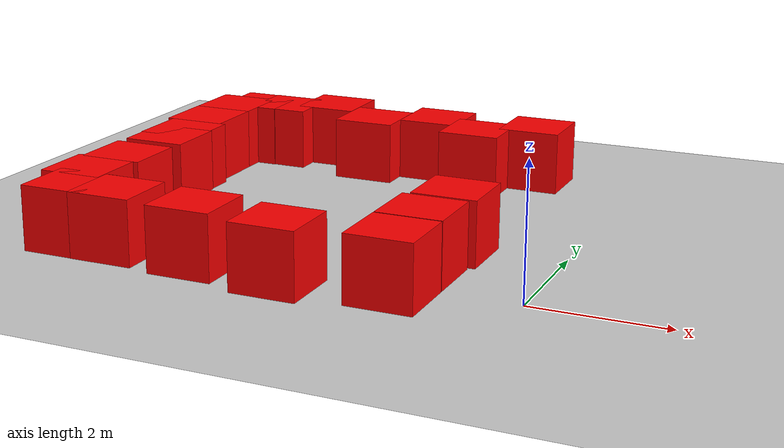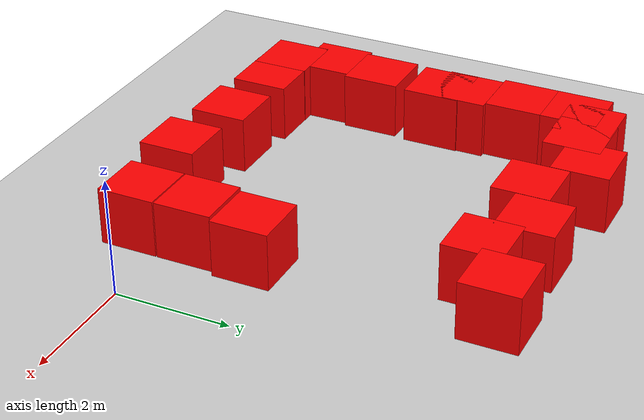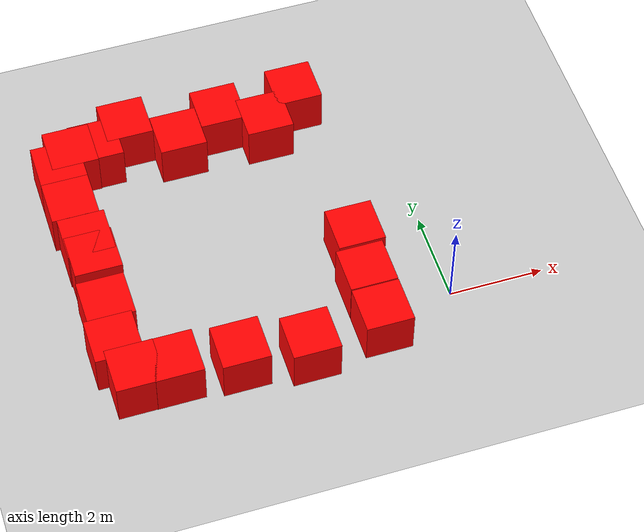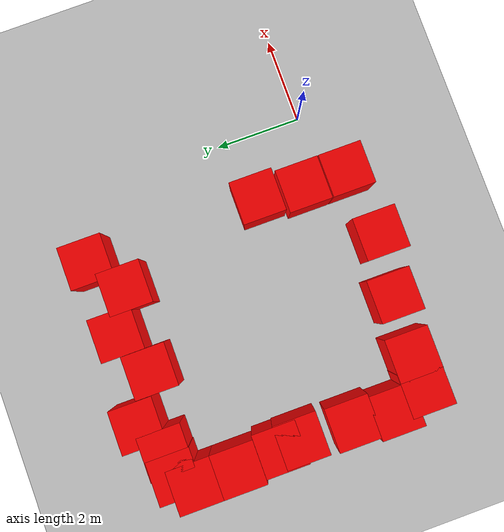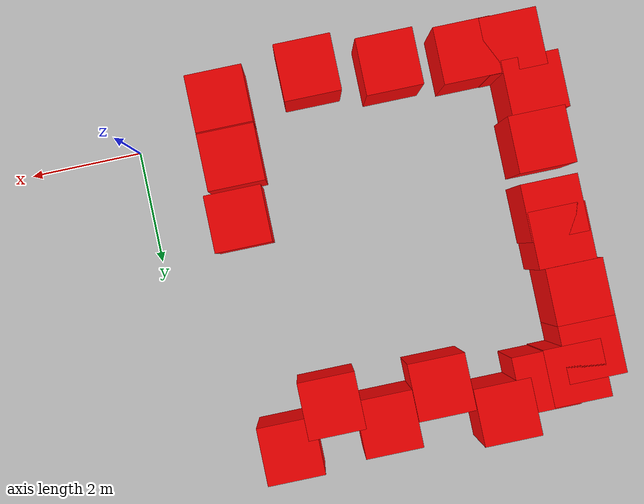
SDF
<sdf version="1.7">
 <world name="default">
  <model name="ground_plane">
   <static>1</static>
   <link name="link">
    <collision name="collision">
     <geometry><plane><normal>0 0 1</normal><size>100 100</size></plane></geometry>
     <surface><friction><ode><mu>100</mu><mu2>50</mu2></ode></friction></surface>
    </collision>
    <visual name="visual">
     <cast_shadows>0</cast_shadows>
     <geometry><plane><normal>0 0 1</normal><size>100 100</size></plane></geometry>
     <material>
      <script><uri>file://media/materials/scripts/gazebo.material</uri><name>Gazebo/Grey</name></script>
     </material>
    </visual>
   </link>
  </model>
  <model name="unit_box_clone_clone_1">
   <link name="link">
    <inertial>
     <mass>1</mass>
     <inertia>
      <ixx>0.166667</ixx>
      <ixy>0</ixy>
      <ixz>0</ixz>
      <iyy>0.166667</iyy>
      <iyz>0</iyz>
      <izz>0.166667</izz>
     </inertia>
    </inertial>
    <visual name="visual">
     <geometry><box><size>1 1 1</size></box></geometry>
     <material>
      <script><name>Gazebo/Grey</name><uri>file://media/materials/scripts/gazebo.material</uri></script>
      <shader type="pixel"><normal_map>__default__</normal_map></shader>
      <ambient>1 0 0 0</ambient>
      <diffuse>0.7 0.7 0.7 1</diffuse>
      <specular>0.01 0.01 0.01 1</specular>
      <emissive>0 0 0 1</emissive>
     </material>
    </visual>
    <collision name="collision">
     <geometry><box><size>1 1 1</size></box></geometry>
     <surface>
      <friction>
       <ode><mu>1</mu><mu2>1</mu2><fdir1>0 0 0</fdir1><slip1>0</slip1><slip2>0</slip2></ode>
       <torsional>
        <coefficient>1</coefficient>
        <patch_radius>0</patch_radius>
        <surface_radius>0</surface_radius>
        <use_patch_radius>1</use_patch_radius>
        <ode><slip>0</slip></ode>
       </torsional>
      </friction>
      <bounce><restitution_coefficient>0</restitution_coefficient><threshold>1e+06</threshold></bounce>
      <contact>
       <collide_without_contact>0</collide_without_contact>
       <collide_without_contact_bitmask>1</collide_without_contact_bitmask>
       <collide_bitmask>1</collide_bitmask>
       <ode>
        <soft_cfm>0</soft_cfm>
        <soft_erp>0.2</soft_erp>
        <kp>1e+13</kp>
        <kd>1</kd>
        <max_vel>0.01</max_vel>
        <min_depth>0</min_depth>
       </ode>
       <bullet>
        <split_impulse>1</split_impulse>
        <split_impulse_penetration_threshold>-0.01</split_impulse_penetration_threshold>
        <soft_cfm>0</soft_cfm>
        <soft_erp>0.2</soft_erp>
        <kp>1e+13</kp>
        <kd>1</kd>
       </bullet>
      </contact>
     </surface>
    </collision>
   </link>
   <static>0</static>
   <pose>-5.37844 5.74394 0.5 0 -0 0</pose>
  </model>
  <model name="unit_box_clone_clone_2">
   <link name="link">
    <inertial>
     <mass>1</mass>
     <inertia>
      <ixx>0.166667</ixx>
      <ixy>0</ixy>
      <ixz>0</ixz>
      <iyy>0.166667</iyy>
      <iyz>0</iyz>
      <izz>0.166667</izz>
     </inertia>
    </inertial>
    <visual name="visual">
     <geometry><box><size>1 1 1</size></box></geometry>
     <material>
      <script><name>Gazebo/Grey</name><uri>file://media/materials/scripts/gazebo.material</uri></script>
      <shader type="pixel"><normal_map>__default__</normal_map></shader>
      <ambient>1 0 0 0</ambient>
      <diffuse>0.7 0.7 0.7 1</diffuse>
      <specular>0.01 0.01 0.01 1</specular>
      <emissive>0 0 0 1</emissive>
     </material>
    </visual>
    <collision name="collision">
     <geometry><box><size>1 1 1</size></box></geometry>
     <surface>
      <friction>
       <ode><mu>1</mu><mu2>1</mu2><fdir1>0 0 0</fdir1><slip1>0</slip1><slip2>0</slip2></ode>
       <torsional>
        <coefficient>1</coefficient>
        <patch_radius>0</patch_radius>
        <surface_radius>0</surface_radius>
        <use_patch_radius>1</use_patch_radius>
        <ode><slip>0</slip></ode>
       </torsional>
      </friction>
      <bounce><restitution_coefficient>0</restitution_coefficient><threshold>1e+06</threshold></bounce>
      <contact>
       <collide_without_contact>0</collide_without_contact>
       <collide_without_contact_bitmask>1</collide_without_contact_bitmask>
       <collide_bitmask>1</collide_bitmask>
       <ode>
        <soft_cfm>0</soft_cfm>
        <soft_erp>0.2</soft_erp>
        <kp>1e+13</kp>
        <kd>1</kd>
        <max_vel>0.01</max_vel>
        <min_depth>0</min_depth>
       </ode>
       <bullet>
        <split_impulse>1</split_impulse>
        <split_impulse_penetration_threshold>-0.01</split_impulse_penetration_threshold>
        <soft_cfm>0</soft_cfm>
        <soft_erp>0.2</soft_erp>
        <kp>1e+13</kp>
        <kd>1</kd>
       </bullet>
      </contact>
     </surface>
    </collision>
   </link>
   <static>0</static>
   <pose>-1.64328 5.63469 0.5 0 -0 0</pose>
  </model>
  <model name="unit_box_clone_clone_3">
   <link name="link">
    <inertial>
     <mass>1</mass>
     <inertia>
      <ixx>0.166667</ixx>
      <ixy>0</ixy>
      <ixz>0</ixz>
      <iyy>0.166667</iyy>
      <iyz>0</iyz>
      <izz>0.166667</izz>
     </inertia>
    </inertial>
    <visual name="visual">
     <geometry><box><size>1 1 1</size></box></geometry>
     <material>
      <script><name>Gazebo/Grey</name><uri>file://media/materials/scripts/gazebo.material</uri></script>
      <shader type="pixel"><normal_map>__default__</normal_map></shader>
      <ambient>1 0 0 0</ambient>
      <diffuse>0.7 0.7 0.7 1</diffuse>
      <specular>0.01 0.01 0.01 1</specular>
      <emissive>0 0 0 1</emissive>
     </material>
    </visual>
    <collision name="collision">
     <geometry><box><size>1 1 1</size></box></geometry>
     <surface>
      <friction>
       <ode><mu>1</mu><mu2>1</mu2><fdir1>0 0 0</fdir1><slip1>0</slip1><slip2>0</slip2></ode>
       <torsional>
        <coefficient>1</coefficient>
        <patch_radius>0</patch_radius>
        <surface_radius>0</surface_radius>
        <use_patch_radius>1</use_patch_radius>
        <ode><slip>0</slip></ode>
       </torsional>
      </friction>
      <bounce><restitution_coefficient>0</restitution_coefficient><threshold>1e+06</threshold></bounce>
      <contact>
       <collide_without_contact>0</collide_without_contact>
       <collide_without_contact_bitmask>1</collide_without_contact_bitmask>
       <collide_bitmask>1</collide_bitmask>
       <ode>
        <soft_cfm>0</soft_cfm>
        <soft_erp>0.2</soft_erp>
        <kp>1e+13</kp>
        <kd>1</kd>
        <max_vel>0.01</max_vel>
        <min_depth>0</min_depth>
       </ode>
       <bullet>
        <split_impulse>1</split_impulse>
        <split_impulse_penetration_threshold>-0.01</split_impulse_penetration_threshold>
        <soft_cfm>0</soft_cfm>
        <soft_erp>0.2</soft_erp>
        <kp>1e+13</kp>
        <kd>1</kd>
       </bullet>
      </contact>
     </surface>
    </collision>
   </link>
   <static>0</static>
   <pose>-1.6664 -0.488777 0.5 0 -0 0</pose>
  </model>
  <model name="unit_box_clone_clone_4">
   <link name="link">
    <inertial>
     <mass>1</mass>
     <inertia>
      <ixx>0.166667</ixx>
      <ixy>0</ixy>
      <ixz>0</ixz>
      <iyy>0.166667</iyy>
      <iyz>0</iyz>
      <izz>0.166667</izz>
     </inertia>
    </inertial>
    <visual name="visual">
     <geometry><box><size>1 1 1</size></box></geometry>
     <material>
      <script><name>Gazebo/Grey</name><uri>file://media/materials/scripts/gazebo.material</uri></script>
      <shader type="pixel"><normal_map>__default__</normal_map></shader>
      <ambient>1 0 0 0</ambient>
      <diffuse>0.7 0.7 0.7 1</diffuse>
      <specular>0.01 0.01 0.01 1</specular>
      <emissive>0 0 0 1</emissive>
     </material>
    </visual>
    <collision name="collision">
     <geometry><box><size>1 1 1</size></box></geometry>
     <surface>
      <friction>
       <ode><mu>1</mu><mu2>1</mu2><fdir1>0 0 0</fdir1><slip1>0</slip1><slip2>0</slip2></ode>
       <torsional>
        <coefficient>1</coefficient>
        <patch_radius>0</patch_radius>
        <surface_radius>0</surface_radius>
        <use_patch_radius>1</use_patch_radius>
        <ode><slip>0</slip></ode>
       </torsional>
      </friction>
      <bounce><restitution_coefficient>0</restitution_coefficient><threshold>1e+06</threshold></bounce>
      <contact>
       <collide_without_contact>0</collide_without_contact>
       <collide_without_contact_bitmask>1</collide_without_contact_bitmask>
       <collide_bitmask>1</collide_bitmask>
       <ode>
        <soft_cfm>0</soft_cfm>
        <soft_erp>0.2</soft_erp>
        <kp>1e+13</kp>
        <kd>1</kd>
        <max_vel>0.01</max_vel>
        <min_depth>0</min_depth>
       </ode>
       <bullet>
        <split_impulse>1</split_impulse>
        <split_impulse_penetration_threshold>-0.01</split_impulse_penetration_threshold>
        <soft_cfm>0</soft_cfm>
        <soft_erp>0.2</soft_erp>
        <kp>1e+13</kp>
        <kd>1</kd>
       </bullet>
      </contact>
     </surface>
    </collision>
   </link>
   <static>0</static>
   <pose>-5.98599 -0.419497 0.5 0 -0 0</pose>
  </model>
  <model name="unit_box_clone_clone_15">
   <link name="link">
    <inertial>
     <mass>1</mass>
     <inertia>
      <ixx>0.166667</ixx>
      <ixy>0</ixy>
      <ixz>0</ixz>
      <iyy>0.166667</iyy>
      <iyz>0</iyz>
      <izz>0.166667</izz>
     </inertia>
    </inertial>
    <visual name="visual">
     <geometry><box><size>1 1 1</size></box></geometry>
     <material>
      <script><name>Gazebo/Grey</name><uri>file://media/materials/scripts/gazebo.material</uri></script>
      <shader type="pixel"><normal_map>__default__</normal_map></shader>
      <ambient>1 0 0 0</ambient>
      <diffuse>0.7 0.7 0.7 1</diffuse>
      <specular>0.01 0.01 0.01 1</specular>
      <emissive>0 0 0 1</emissive>
     </material>
    </visual>
    <collision name="collision">
     <geometry><box><size>1 1 1</size></box></geometry>
     <surface>
      <friction>
       <ode><mu>1</mu><mu2>1</mu2><fdir1>0 0 0</fdir1><slip1>0</slip1><slip2>0</slip2></ode>
       <torsional>
        <coefficient>1</coefficient>
        <patch_radius>0</patch_radius>
        <surface_radius>0</surface_radius>
        <use_patch_radius>1</use_patch_radius>
        <ode><slip>0</slip></ode>
       </torsional>
      </friction>
      <bounce><restitution_coefficient>0</restitution_coefficient><threshold>1e+06</threshold></bounce>
      <contact>
       <collide_without_contact>0</collide_without_contact>
       <collide_without_contact_bitmask>1</collide_without_contact_bitmask>
       <collide_bitmask>1</collide_bitmask>
       <ode>
        <soft_cfm>0</soft_cfm>
        <soft_erp>0.2</soft_erp>
        <kp>1e+13</kp>
        <kd>1</kd>
        <max_vel>0.01</max_vel>
        <min_depth>0</min_depth>
       </ode>
       <bullet>
        <split_impulse>1</split_impulse>
        <split_impulse_penetration_threshold>-0.01</split_impulse_penetration_threshold>
        <soft_cfm>0</soft_cfm>
        <soft_erp>0.2</soft_erp>
        <kp>1e+13</kp>
        <kd>1</kd>
       </bullet>
      </contact>
     </surface>
    </collision>
   </link>
   <static>0</static>
   <pose>-3.25657 -0.697342 0.5 0 -0 0</pose>
  </model>
  <model name="unit_box_clone_clone_16">
   <link name="link">
    <inertial>
     <mass>1</mass>
     <inertia>
      <ixx>0.166667</ixx>
      <ixy>0</ixy>
      <ixz>0</ixz>
      <iyy>0.166667</iyy>
      <iyz>0</iyz>
      <izz>0.166667</izz>
     </inertia>
    </inertial>
    <visual name="visual">
     <geometry><box><size>1 1 1</size></box></geometry>
     <material>
      <script><name>Gazebo/Grey</name><uri>file://media/materials/scripts/gazebo.material</uri></script>
      <shader type="pixel"><normal_map>__default__</normal_map></shader>
      <ambient>1 0 0 0</ambient>
      <diffuse>0.7 0.7 0.7 1</diffuse>
      <specular>0.01 0.01 0.01 1</specular>
      <emissive>0 0 0 1</emissive>
     </material>
    </visual>
    <collision name="collision">
     <geometry><box><size>1 1 1</size></box></geometry>
     <surface>
      <friction>
       <ode><mu>1</mu><mu2>1</mu2><fdir1>0 0 0</fdir1><slip1>0</slip1><slip2>0</slip2></ode>
       <torsional>
        <coefficient>1</coefficient>
        <patch_radius>0</patch_radius>
        <surface_radius>0</surface_radius>
        <use_patch_radius>1</use_patch_radius>
        <ode><slip>0</slip></ode>
       </torsional>
      </friction>
      <bounce><restitution_coefficient>0</restitution_coefficient><threshold>1e+06</threshold></bounce>
      <contact>
       <collide_without_contact>0</collide_without_contact>
       <collide_without_contact_bitmask>1</collide_without_contact_bitmask>
       <collide_bitmask>1</collide_bitmask>
       <ode>
        <soft_cfm>0</soft_cfm>
        <soft_erp>0.2</soft_erp>
        <kp>1e+13</kp>
        <kd>1</kd>
        <max_vel>0.01</max_vel>
        <min_depth>0</min_depth>
       </ode>
       <bullet>
        <split_impulse>1</split_impulse>
        <split_impulse_penetration_threshold>-0.01</split_impulse_penetration_threshold>
        <soft_cfm>0</soft_cfm>
        <soft_erp>0.2</soft_erp>
        <kp>1e+13</kp>
        <kd>1</kd>
       </bullet>
      </contact>
     </surface>
    </collision>
   </link>
   <static>0</static>
   <pose>-4.6488 -0.507954 0.5 0 -0 0</pose>
  </model>
  <model name="unit_box_clone_clone_23">
   <link name="link">
    <inertial>
     <mass>1</mass>
     <inertia>
      <ixx>0.166667</ixx>
      <ixy>0</ixy>
      <ixz>0</ixz>
      <iyy>0.166667</iyy>
      <iyz>0</iyz>
      <izz>0.166667</izz>
     </inertia>
    </inertial>
    <visual name="visual">
     <geometry><box><size>1 1 1</size></box></geometry>
     <material>
      <script><name>Gazebo/Grey</name><uri>file://media/materials/scripts/gazebo.material</uri></script>
      <shader type="pixel"><normal_map>__default__</normal_map></shader>
      <ambient>1 0 0 0</ambient>
      <diffuse>0.7 0.7 0.7 1</diffuse>
      <specular>0.01 0.01 0.01 1</specular>
      <emissive>0 0 0 1</emissive>
     </material>
    </visual>
    <collision name="collision">
     <geometry><box><size>1 1 1</size></box></geometry>
     <surface>
      <friction>
       <ode><mu>1</mu><mu2>1</mu2><fdir1>0 0 0</fdir1><slip1>0</slip1><slip2>0</slip2></ode>
       <torsional>
        <coefficient>1</coefficient>
        <patch_radius>0</patch_radius>
        <surface_radius>0</surface_radius>
        <use_patch_radius>1</use_patch_radius>
        <ode><slip>0</slip></ode>
       </torsional>
      </friction>
      <bounce><restitution_coefficient>0</restitution_coefficient><threshold>1e+06</threshold></bounce>
      <contact>
       <collide_without_contact>0</collide_without_contact>
       <collide_without_contact_bitmask>1</collide_without_contact_bitmask>
       <collide_bitmask>1</collide_bitmask>
       <ode>
        <soft_cfm>0</soft_cfm>
        <soft_erp>0.2</soft_erp>
        <kp>1e+13</kp>
        <kd>1</kd>
        <max_vel>0.01</max_vel>
        <min_depth>0</min_depth>
       </ode>
       <bullet>
        <split_impulse>1</split_impulse>
        <split_impulse_penetration_threshold>-0.01</split_impulse_penetration_threshold>
        <soft_cfm>0</soft_cfm>
        <soft_erp>0.2</soft_erp>
        <kp>1e+13</kp>
        <kd>1</kd>
       </bullet>
      </contact>
     </surface>
    </collision>
   </link>
   <static>0</static>
   <pose>-1.56953 1.58784 0.5 0 -0 0</pose>
  </model>
  <model name="unit_box_clone_clone_25">
   <link name="link">
    <inertial>
     <mass>1</mass>
     <inertia>
      <ixx>0.166667</ixx>
      <ixy>0</ixy>
      <ixz>0</ixz>
      <iyy>0.166667</iyy>
      <iyz>0</iyz>
      <izz>0.166667</izz>
     </inertia>
    </inertial>
    <visual name="visual">
     <geometry><box><size>1 1 1</size></box></geometry>
     <material>
      <script><name>Gazebo/Grey</name><uri>file://media/materials/scripts/gazebo.material</uri></script>
      <shader type="pixel"><normal_map>__default__</normal_map></shader>
      <ambient>1 0 0 0</ambient>
      <diffuse>0.7 0.7 0.7 1</diffuse>
      <specular>0.01 0.01 0.01 1</specular>
      <emissive>0 0 0 1</emissive>
     </material>
    </visual>
    <collision name="collision">
     <geometry><box><size>1 1 1</size></box></geometry>
     <surface>
      <friction>
       <ode><mu>1</mu><mu2>1</mu2><fdir1>0 0 0</fdir1><slip1>0</slip1><slip2>0</slip2></ode>
       <torsional>
        <coefficient>1</coefficient>
        <patch_radius>0</patch_radius>
        <surface_radius>0</surface_radius>
        <use_patch_radius>1</use_patch_radius>
        <ode><slip>0</slip></ode>
       </torsional>
      </friction>
      <bounce><restitution_coefficient>0</restitution_coefficient><threshold>1e+06</threshold></bounce>
      <contact>
       <collide_without_contact>0</collide_without_contact>
       <collide_without_contact_bitmask>1</collide_without_contact_bitmask>
       <collide_bitmask>1</collide_bitmask>
       <ode>
        <soft_cfm>0</soft_cfm>
        <soft_erp>0.2</soft_erp>
        <kp>1e+13</kp>
        <kd>1</kd>
        <max_vel>0.01</max_vel>
        <min_depth>0</min_depth>
       </ode>
       <bullet>
        <split_impulse>1</split_impulse>
        <split_impulse_penetration_threshold>-0.01</split_impulse_penetration_threshold>
        <soft_cfm>0</soft_cfm>
        <soft_erp>0.2</soft_erp>
        <kp>1e+13</kp>
        <kd>1</kd>
       </bullet>
      </contact>
     </surface>
    </collision>
   </link>
   <static>0</static>
   <pose>-3.3651 5.52839 0.5 0 -0 0</pose>
  </model>
  <model name="unit_box_clone_clone_52">
   <link name="link">
    <inertial>
     <mass>1</mass>
     <inertia>
      <ixx>0.166667</ixx>
      <ixy>0</ixy>
      <ixz>0</ixz>
      <iyy>0.166667</iyy>
      <iyz>0</iyz>
      <izz>0.166667</izz>
     </inertia>
    </inertial>
    <visual name="visual">
     <geometry><box><size>1 1 1</size></box></geometry>
     <material>
      <script><name>Gazebo/Grey</name><uri>file://media/materials/scripts/gazebo.material</uri></script>
      <shader type="pixel"><normal_map>__default__</normal_map></shader>
      <ambient>1 0 0 0</ambient>
      <diffuse>0.7 0.7 0.7 1</diffuse>
      <specular>0.01 0.01 0.01 1</specular>
      <emissive>0 0 0 1</emissive>
     </material>
    </visual>
    <collision name="collision">
     <geometry><box><size>1 1 1</size></box></geometry>
     <surface>
      <friction>
       <ode><mu>1</mu><mu2>1</mu2><fdir1>0 0 0</fdir1><slip1>0</slip1><slip2>0</slip2></ode>
       <torsional>
        <coefficient>1</coefficient>
        <patch_radius>0</patch_radius>
        <surface_radius>0</surface_radius>
        <use_patch_radius>1</use_patch_radius>
        <ode><slip>0</slip></ode>
       </torsional>
      </friction>
      <bounce><restitution_coefficient>0</restitution_coefficient><threshold>1e+06</threshold></bounce>
      <contact>
       <collide_without_contact>0</collide_without_contact>
       <collide_without_contact_bitmask>1</collide_without_contact_bitmask>
       <collide_bitmask>1</collide_bitmask>
       <ode>
        <soft_cfm>0</soft_cfm>
        <soft_erp>0.2</soft_erp>
        <kp>1e+13</kp>
        <kd>1</kd>
        <max_vel>0.01</max_vel>
        <min_depth>0</min_depth>
       </ode>
       <bullet>
        <split_impulse>1</split_impulse>
        <split_impulse_penetration_threshold>-0.01</split_impulse_penetration_threshold>
        <soft_cfm>0</soft_cfm>
        <soft_erp>0.2</soft_erp>
        <kp>1e+13</kp>
        <kd>1</kd>
       </bullet>
      </contact>
     </surface>
    </collision>
   </link>
   <static>0</static>
   <pose>-6.78403 -0.413254 0.5 0 -0 0</pose>
  </model>
  <model name="unit_box_clone_clone_53">
   <link name="link">
    <inertial>
     <mass>1</mass>
     <inertia>
      <ixx>0.166667</ixx>
      <ixy>0</ixy>
      <ixz>0</ixz>
      <iyy>0.166667</iyy>
      <iyz>0</iyz>
      <izz>0.166667</izz>
     </inertia>
    </inertial>
    <visual name="visual">
     <geometry><box><size>1 1 1</size></box></geometry>
     <material>
      <script><name>Gazebo/Grey</name><uri>file://media/materials/scripts/gazebo.material</uri></script>
      <shader type="pixel"><normal_map>__default__</normal_map></shader>
      <ambient>1 0 0 0</ambient>
      <diffuse>0.7 0.7 0.7 1</diffuse>
      <specular>0.01 0.01 0.01 1</specular>
      <emissive>0 0 0 1</emissive>
     </material>
    </visual>
    <collision name="collision">
     <geometry><box><size>1 1 1</size></box></geometry>
     <surface>
      <friction>
       <ode><mu>1</mu><mu2>1</mu2><fdir1>0 0 0</fdir1><slip1>0</slip1><slip2>0</slip2></ode>
       <torsional>
        <coefficient>1</coefficient>
        <patch_radius>0</patch_radius>
        <surface_radius>0</surface_radius>
        <use_patch_radius>1</use_patch_radius>
        <ode><slip>0</slip></ode>
       </torsional>
      </friction>
      <bounce><restitution_coefficient>0</restitution_coefficient><threshold>1e+06</threshold></bounce>
      <contact>
       <collide_without_contact>0</collide_without_contact>
       <collide_without_contact_bitmask>1</collide_without_contact_bitmask>
       <collide_bitmask>1</collide_bitmask>
       <ode>
        <soft_cfm>0</soft_cfm>
        <soft_erp>0.2</soft_erp>
        <kp>1e+13</kp>
        <kd>1</kd>
        <max_vel>0.01</max_vel>
        <min_depth>0</min_depth>
       </ode>
       <bullet>
        <split_impulse>1</split_impulse>
        <split_impulse_penetration_threshold>-0.01</split_impulse_penetration_threshold>
        <soft_cfm>0</soft_cfm>
        <soft_erp>0.2</soft_erp>
        <kp>1e+13</kp>
        <kd>1</kd>
       </bullet>
      </contact>
     </surface>
    </collision>
   </link>
   <static>0</static>
   <pose>-7.00404 0.374459 0.5 0 -0 0</pose>
  </model>
  <model name="unit_box_clone_clone_54">
   <link name="link">
    <inertial>
     <mass>1</mass>
     <inertia>
      <ixx>0.166667</ixx>
      <ixy>0</ixy>
      <ixz>0</ixz>
      <iyy>0.166667</iyy>
      <iyz>0</iyz>
      <izz>0.166667</izz>
     </inertia>
    </inertial>
    <visual name="visual">
     <geometry><box><size>1 1 1</size></box></geometry>
     <material>
      <script><name>Gazebo/Grey</name><uri>file://media/materials/scripts/gazebo.material</uri></script>
      <shader type="pixel"><normal_map>__default__</normal_map></shader>
      <ambient>1 0 0 0</ambient>
      <diffuse>0.7 0.7 0.7 1</diffuse>
      <specular>0.01 0.01 0.01 1</specular>
      <emissive>0 0 0 1</emissive>
     </material>
    </visual>
    <collision name="collision">
     <geometry><box><size>1 1 1</size></box></geometry>
     <surface>
      <friction>
       <ode><mu>1</mu><mu2>1</mu2><fdir1>0 0 0</fdir1><slip1>0</slip1><slip2>0</slip2></ode>
       <torsional>
        <coefficient>1</coefficient>
        <patch_radius>0</patch_radius>
        <surface_radius>0</surface_radius>
        <use_patch_radius>1</use_patch_radius>
        <ode><slip>0</slip></ode>
       </torsional>
      </friction>
      <bounce><restitution_coefficient>0</restitution_coefficient><threshold>1e+06</threshold></bounce>
      <contact>
       <collide_without_contact>0</collide_without_contact>
       <collide_without_contact_bitmask>1</collide_without_contact_bitmask>
       <collide_bitmask>1</collide_bitmask>
       <ode>
        <soft_cfm>0</soft_cfm>
        <soft_erp>0.2</soft_erp>
        <kp>1e+13</kp>
        <kd>1</kd>
        <max_vel>0.01</max_vel>
        <min_depth>0</min_depth>
       </ode>
       <bullet>
        <split_impulse>1</split_impulse>
        <split_impulse_penetration_threshold>-0.01</split_impulse_penetration_threshold>
        <soft_cfm>0</soft_cfm>
        <soft_erp>0.2</soft_erp>
        <kp>1e+13</kp>
        <kd>1</kd>
       </bullet>
      </contact>
     </surface>
    </collision>
   </link>
   <static>0</static>
   <pose>-6.92168 1.32894 0.5 0 -0 0</pose>
  </model>
  <model name="unit_box_clone_clone_55">
   <link name="link">
    <inertial>
     <mass>1</mass>
     <inertia>
      <ixx>0.166667</ixx>
      <ixy>0</ixy>
      <ixz>0</ixz>
      <iyy>0.166667</iyy>
      <iyz>0</iyz>
      <izz>0.166667</izz>
     </inertia>
    </inertial>
    <visual name="visual">
     <geometry><box><size>1 1 1</size></box></geometry>
     <material>
      <script><name>Gazebo/Grey</name><uri>file://media/materials/scripts/gazebo.material</uri></script>
      <shader type="pixel"><normal_map>__default__</normal_map></shader>
      <ambient>1 0 0 0</ambient>
      <diffuse>0.7 0.7 0.7 1</diffuse>
      <specular>0.01 0.01 0.01 1</specular>
      <emissive>0 0 0 1</emissive>
     </material>
    </visual>
    <collision name="collision">
     <geometry><box><size>1 1 1</size></box></geometry>
     <surface>
      <friction>
       <ode><mu>1</mu><mu2>1</mu2><fdir1>0 0 0</fdir1><slip1>0</slip1><slip2>0</slip2></ode>
       <torsional>
        <coefficient>1</coefficient>
        <patch_radius>0</patch_radius>
        <surface_radius>0</surface_radius>
        <use_patch_radius>1</use_patch_radius>
        <ode><slip>0</slip></ode>
       </torsional>
      </friction>
      <bounce><restitution_coefficient>0</restitution_coefficient><threshold>1e+06</threshold></bounce>
      <contact>
       <collide_without_contact>0</collide_without_contact>
       <collide_without_contact_bitmask>1</collide_without_contact_bitmask>
       <collide_bitmask>1</collide_bitmask>
       <ode>
        <soft_cfm>0</soft_cfm>
        <soft_erp>0.2</soft_erp>
        <kp>1e+13</kp>
        <kd>1</kd>
        <max_vel>0.01</max_vel>
        <min_depth>0</min_depth>
       </ode>
       <bullet>
        <split_impulse>1</split_impulse>
        <split_impulse_penetration_threshold>-0.01</split_impulse_penetration_threshold>
        <soft_cfm>0</soft_cfm>
        <soft_erp>0.2</soft_erp>
        <kp>1e+13</kp>
        <kd>1</kd>
       </bullet>
      </contact>
     </surface>
    </collision>
   </link>
   <static>0</static>
   <pose>-6.88313 2.51413 0.5 0 -0 0</pose>
  </model>
  <model name="unit_box_clone_clone_56">
   <link name="link">
    <inertial>
     <mass>1</mass>
     <inertia>
      <ixx>0.166667</ixx>
      <ixy>0</ixy>
      <ixz>0</ixz>
      <iyy>0.166667</iyy>
      <iyz>0</iyz>
      <izz>0.166667</izz>
     </inertia>
    </inertial>
    <visual name="visual">
     <geometry><box><size>1 1 1</size></box></geometry>
     <material>
      <script><name>Gazebo/Grey</name><uri>file://media/materials/scripts/gazebo.material</uri></script>
      <shader type="pixel"><normal_map>__default__</normal_map></shader>
      <ambient>1 0 0 0</ambient>
      <diffuse>0.7 0.7 0.7 1</diffuse>
      <specular>0.01 0.01 0.01 1</specular>
      <emissive>0 0 0 1</emissive>
     </material>
    </visual>
    <collision name="collision">
     <geometry><box><size>1 1 1</size></box></geometry>
     <surface>
      <friction>
       <ode><mu>1</mu><mu2>1</mu2><fdir1>0 0 0</fdir1><slip1>0</slip1><slip2>0</slip2></ode>
       <torsional>
        <coefficient>1</coefficient>
        <patch_radius>0</patch_radius>
        <surface_radius>0</surface_radius>
        <use_patch_radius>1</use_patch_radius>
        <ode><slip>0</slip></ode>
       </torsional>
      </friction>
      <bounce><restitution_coefficient>0</restitution_coefficient><threshold>1e+06</threshold></bounce>
      <contact>
       <collide_without_contact>0</collide_without_contact>
       <collide_without_contact_bitmask>1</collide_without_contact_bitmask>
       <collide_bitmask>1</collide_bitmask>
       <ode>
        <soft_cfm>0</soft_cfm>
        <soft_erp>0.2</soft_erp>
        <kp>1e+13</kp>
        <kd>1</kd>
        <max_vel>0.01</max_vel>
        <min_depth>0</min_depth>
       </ode>
       <bullet>
        <split_impulse>1</split_impulse>
        <split_impulse_penetration_threshold>-0.01</split_impulse_penetration_threshold>
        <soft_cfm>0</soft_cfm>
        <soft_erp>0.2</soft_erp>
        <kp>1e+13</kp>
        <kd>1</kd>
       </bullet>
      </contact>
     </surface>
    </collision>
   </link>
   <static>0</static>
   <pose>-7 4 0.5 0 -0 0</pose>
  </model>
  <model name="unit_box_clone_clone_57">
   <link name="link">
    <inertial>
     <mass>1</mass>
     <inertia>
      <ixx>0.166667</ixx>
      <ixy>0</ixy>
      <ixz>0</ixz>
      <iyy>0.166667</iyy>
      <iyz>0</iyz>
      <izz>0.166667</izz>
     </inertia>
    </inertial>
    <visual name="visual">
     <geometry><box><size>1 1 1</size></box></geometry>
     <material>
      <script><name>Gazebo/Grey</name><uri>file://media/materials/scripts/gazebo.material</uri></script>
      <shader type="pixel"><normal_map>__default__</normal_map></shader>
      <ambient>1 0 0 0</ambient>
      <diffuse>0.7 0.7 0.7 1</diffuse>
      <specular>0.01 0.01 0.01 1</specular>
      <emissive>0 0 0 1</emissive>
     </material>
    </visual>
    <collision name="collision">
     <geometry><box><size>1 1 1</size></box></geometry>
     <surface>
      <friction>
       <ode><mu>1</mu><mu2>1</mu2><fdir1>0 0 0</fdir1><slip1>0</slip1><slip2>0</slip2></ode>
       <torsional>
        <coefficient>1</coefficient>
        <patch_radius>0</patch_radius>
        <surface_radius>0</surface_radius>
        <use_patch_radius>1</use_patch_radius>
        <ode><slip>0</slip></ode>
       </torsional>
      </friction>
      <bounce><restitution_coefficient>0</restitution_coefficient><threshold>1e+06</threshold></bounce>
      <contact>
       <collide_without_contact>0</collide_without_contact>
       <collide_without_contact_bitmask>1</collide_without_contact_bitmask>
       <collide_bitmask>1</collide_bitmask>
       <ode>
        <soft_cfm>0</soft_cfm>
        <soft_erp>0.2</soft_erp>
        <kp>1e+13</kp>
        <kd>1</kd>
        <max_vel>0.01</max_vel>
        <min_depth>0</min_depth>
       </ode>
       <bullet>
        <split_impulse>1</split_impulse>
        <split_impulse_penetration_threshold>-0.01</split_impulse_penetration_threshold>
        <soft_cfm>0</soft_cfm>
        <soft_erp>0.2</soft_erp>
        <kp>1e+13</kp>
        <kd>1</kd>
       </bullet>
      </contact>
     </surface>
    </collision>
   </link>
   <static>0</static>
   <pose>-6.90562 2.99939 0.5 0 -0 0</pose>
  </model>
  <model name="unit_box_clone_clone_58">
   <link name="link">
    <inertial>
     <mass>1</mass>
     <inertia>
      <ixx>0.166667</ixx>
      <ixy>0</ixy>
      <ixz>0</ixz>
      <iyy>0.166667</iyy>
      <iyz>0</iyz>
      <izz>0.166667</izz>
     </inertia>
    </inertial>
    <visual name="visual">
     <geometry><box><size>1 1 1</size></box></geometry>
     <material>
      <script><name>Gazebo/Grey</name><uri>file://media/materials/scripts/gazebo.material</uri></script>
      <shader type="pixel"><normal_map>__default__</normal_map></shader>
      <ambient>1 0 0 0</ambient>
      <diffuse>0.7 0.7 0.7 1</diffuse>
      <specular>0.01 0.01 0.01 1</specular>
      <emissive>0 0 0 1</emissive>
     </material>
    </visual>
    <collision name="collision">
     <geometry><box><size>1 1 1</size></box></geometry>
     <surface>
      <friction>
       <ode><mu>1</mu><mu2>1</mu2><fdir1>0 0 0</fdir1><slip1>0</slip1><slip2>0</slip2></ode>
       <torsional>
        <coefficient>1</coefficient>
        <patch_radius>0</patch_radius>
        <surface_radius>0</surface_radius>
        <use_patch_radius>1</use_patch_radius>
        <ode><slip>0</slip></ode>
       </torsional>
      </friction>
      <bounce><restitution_coefficient>0</restitution_coefficient><threshold>1e+06</threshold></bounce>
      <contact>
       <collide_without_contact>0</collide_without_contact>
       <collide_without_contact_bitmask>1</collide_without_contact_bitmask>
       <collide_bitmask>1</collide_bitmask>
       <ode>
        <soft_cfm>0</soft_cfm>
        <soft_erp>0.2</soft_erp>
        <kp>1e+13</kp>
        <kd>1</kd>
        <max_vel>0.01</max_vel>
        <min_depth>0</min_depth>
       </ode>
       <bullet>
        <split_impulse>1</split_impulse>
        <split_impulse_penetration_threshold>-0.01</split_impulse_penetration_threshold>
        <soft_cfm>0</soft_cfm>
        <soft_erp>0.2</soft_erp>
        <kp>1e+13</kp>
        <kd>1</kd>
       </bullet>
      </contact>
     </surface>
    </collision>
   </link>
   <static>0</static>
   <pose>-7 5 0.5 0 -0 0</pose>
  </model>
  <model name="unit_box_clone_clone_59">
   <link name="link">
    <inertial>
     <mass>1</mass>
     <inertia>
      <ixx>0.166667</ixx>
      <ixy>0</ixy>
      <ixz>0</ixz>
      <iyy>0.166667</iyy>
      <iyz>0</iyz>
      <izz>0.166667</izz>
     </inertia>
    </inertial>
    <visual name="visual">
     <geometry><box><size>1 1 1</size></box></geometry>
     <material>
      <script><name>Gazebo/Grey</name><uri>file://media/materials/scripts/gazebo.material</uri></script>
      <shader type="pixel"><normal_map>__default__</normal_map></shader>
      <ambient>1 0 0 0</ambient>
      <diffuse>0.7 0.7 0.7 1</diffuse>
      <specular>0.01 0.01 0.01 1</specular>
      <emissive>0 0 0 1</emissive>
     </material>
    </visual>
    <collision name="collision">
     <geometry><box><size>1 1 1</size></box></geometry>
     <surface>
      <friction>
       <ode><mu>1</mu><mu2>1</mu2><fdir1>0 0 0</fdir1><slip1>0</slip1><slip2>0</slip2></ode>
       <torsional>
        <coefficient>1</coefficient>
        <patch_radius>0</patch_radius>
        <surface_radius>0</surface_radius>
        <use_patch_radius>1</use_patch_radius>
        <ode><slip>0</slip></ode>
       </torsional>
      </friction>
      <bounce><restitution_coefficient>0</restitution_coefficient><threshold>1e+06</threshold></bounce>
      <contact>
       <collide_without_contact>0</collide_without_contact>
       <collide_without_contact_bitmask>1</collide_without_contact_bitmask>
       <collide_bitmask>1</collide_bitmask>
       <ode>
        <soft_cfm>0</soft_cfm>
        <soft_erp>0.2</soft_erp>
        <kp>1e+13</kp>
        <kd>1</kd>
        <max_vel>0.01</max_vel>
        <min_depth>0</min_depth>
       </ode>
       <bullet>
        <split_impulse>1</split_impulse>
        <split_impulse_penetration_threshold>-0.01</split_impulse_penetration_threshold>
        <soft_cfm>0</soft_cfm>
        <soft_erp>0.2</soft_erp>
        <kp>1e+13</kp>
        <kd>1</kd>
       </bullet>
      </contact>
     </surface>
    </collision>
   </link>
   <static>0</static>
   <pose>-6.67116 5.33772 0.5 0 -0 0</pose>
  </model>
  <model name="unit_box_clone_clone_60">
   <link name="link">
    <inertial>
     <mass>1</mass>
     <inertia>
      <ixx>0.166667</ixx>
      <ixy>0</ixy>
      <ixz>0</ixz>
      <iyy>0.166667</iyy>
      <iyz>0</iyz>
      <izz>0.166667</izz>
     </inertia>
    </inertial>
    <visual name="visual">
     <geometry><box><size>1 1 1</size></box></geometry>
     <material>
      <script><name>Gazebo/Grey</name><uri>file://media/materials/scripts/gazebo.material</uri></script>
      <shader type="pixel"><normal_map>__default__</normal_map></shader>
      <ambient>1 0 0 0</ambient>
      <diffuse>0.7 0.7 0.7 1</diffuse>
      <specular>0.01 0.01 0.01 1</specular>
      <emissive>0 0 0 1</emissive>
     </material>
    </visual>
    <collision name="collision">
     <geometry><box><size>1 1 1</size></box></geometry>
     <surface>
      <friction>
       <ode><mu>1</mu><mu2>1</mu2><fdir1>0 0 0</fdir1><slip1>0</slip1><slip2>0</slip2></ode>
       <torsional>
        <coefficient>1</coefficient>
        <patch_radius>0</patch_radius>
        <surface_radius>0</surface_radius>
        <use_patch_radius>1</use_patch_radius>
        <ode><slip>0</slip></ode>
       </torsional>
      </friction>
      <bounce><restitution_coefficient>0</restitution_coefficient><threshold>1e+06</threshold></bounce>
      <contact>
       <collide_without_contact>0</collide_without_contact>
       <collide_without_contact_bitmask>1</collide_without_contact_bitmask>
       <collide_bitmask>1</collide_bitmask>
       <ode>
        <soft_cfm>0</soft_cfm>
        <soft_erp>0.2</soft_erp>
        <kp>1e+13</kp>
        <kd>1</kd>
        <max_vel>0.01</max_vel>
        <min_depth>0</min_depth>
       </ode>
       <bullet>
        <split_impulse>1</split_impulse>
        <split_impulse_penetration_threshold>-0.01</split_impulse_penetration_threshold>
        <soft_cfm>0</soft_cfm>
        <soft_erp>0.2</soft_erp>
        <kp>1e+13</kp>
        <kd>1</kd>
       </bullet>
      </contact>
     </surface>
    </collision>
   </link>
   <static>0</static>
   <pose>-6.12161 5.35303 0.5 0 -0 0</pose>
  </model>
  <model name="unit_box_clone_clone_61">
   <link name="link">
    <inertial>
     <mass>1</mass>
     <inertia>
      <ixx>0.166667</ixx>
      <ixy>0</ixy>
      <ixz>0</ixz>
      <iyy>0.166667</iyy>
      <iyz>0</iyz>
      <izz>0.166667</izz>
     </inertia>
    </inertial>
    <visual name="visual">
     <geometry><box><size>1 1 1</size></box></geometry>
     <material>
      <script><name>Gazebo/Grey</name><uri>file://media/materials/scripts/gazebo.material</uri></script>
      <shader type="pixel"><normal_map>__default__</normal_map></shader>
      <ambient>1 0 0 0</ambient>
      <diffuse>0.7 0.7 0.7 1</diffuse>
      <specular>0.01 0.01 0.01 1</specular>
      <emissive>0 0 0 1</emissive>
     </material>
    </visual>
    <collision name="collision">
     <geometry><box><size>1 1 1</size></box></geometry>
     <surface>
      <friction>
       <ode><mu>1</mu><mu2>1</mu2><fdir1>0 0 0</fdir1><slip1>0</slip1><slip2>0</slip2></ode>
       <torsional>
        <coefficient>1</coefficient>
        <patch_radius>0</patch_radius>
        <surface_radius>0</surface_radius>
        <use_patch_radius>1</use_patch_radius>
        <ode><slip>0</slip></ode>
       </torsional>
      </friction>
      <bounce><restitution_coefficient>0</restitution_coefficient><threshold>1e+06</threshold></bounce>
      <contact>
       <collide_without_contact>0</collide_without_contact>
       <collide_without_contact_bitmask>1</collide_without_contact_bitmask>
       <collide_bitmask>1</collide_bitmask>
       <ode>
        <soft_cfm>0</soft_cfm>
        <soft_erp>0.2</soft_erp>
        <kp>1e+13</kp>
        <kd>1</kd>
        <max_vel>0.01</max_vel>
        <min_depth>0</min_depth>
       </ode>
       <bullet>
        <split_impulse>1</split_impulse>
        <split_impulse_penetration_threshold>-0.01</split_impulse_penetration_threshold>
        <soft_cfm>0</soft_cfm>
        <soft_erp>0.2</soft_erp>
        <kp>1e+13</kp>
        <kd>1</kd>
       </bullet>
      </contact>
     </surface>
    </collision>
   </link>
   <static>0</static>
   <pose>-4.37034 5.09841 0.5 0 -0 0</pose>
  </model>
  <model name="unit_box_clone_clone_62">
   <link name="link">
    <inertial>
     <mass>1</mass>
     <inertia>
      <ixx>0.166667</ixx>
      <ixy>0</ixy>
      <ixz>0</ixz>
      <iyy>0.166667</iyy>
      <iyz>0</iyz>
      <izz>0.166667</izz>
     </inertia>
    </inertial>
    <visual name="visual">
     <geometry><box><size>1 1 1</size></box></geometry>
     <material>
      <script><name>Gazebo/Grey</name><uri>file://media/materials/scripts/gazebo.material</uri></script>
      <shader type="pixel"><normal_map>__default__</normal_map></shader>
      <ambient>1 0 0 0</ambient>
      <diffuse>0.7 0.7 0.7 1</diffuse>
      <specular>0.01 0.01 0.01 1</specular>
      <emissive>0 0 0 1</emissive>
     </material>
    </visual>
    <collision name="collision">
     <geometry><box><size>1 1 1</size></box></geometry>
     <surface>
      <friction>
       <ode><mu>1</mu><mu2>1</mu2><fdir1>0 0 0</fdir1><slip1>0</slip1><slip2>0</slip2></ode>
       <torsional>
        <coefficient>1</coefficient>
        <patch_radius>0</patch_radius>
        <surface_radius>0</surface_radius>
        <use_patch_radius>1</use_patch_radius>
        <ode><slip>0</slip></ode>
       </torsional>
      </friction>
      <bounce><restitution_coefficient>0</restitution_coefficient><threshold>1e+06</threshold></bounce>
      <contact>
       <collide_without_contact>0</collide_without_contact>
       <collide_without_contact_bitmask>1</collide_without_contact_bitmask>
       <collide_bitmask>1</collide_bitmask>
       <ode>
        <soft_cfm>0</soft_cfm>
        <soft_erp>0.2</soft_erp>
        <kp>1e+13</kp>
        <kd>1</kd>
        <max_vel>0.01</max_vel>
        <min_depth>0</min_depth>
       </ode>
       <bullet>
        <split_impulse>1</split_impulse>
        <split_impulse_penetration_threshold>-0.01</split_impulse_penetration_threshold>
        <soft_cfm>0</soft_cfm>
        <soft_erp>0.2</soft_erp>
        <kp>1e+13</kp>
        <kd>1</kd>
       </bullet>
      </contact>
     </surface>
    </collision>
   </link>
   <static>0</static>
   <pose>-2.47378 5.02437 0.5 0 -0 0</pose>
  </model>
  <model name="unit_box_clone_clone_65">
   <link name="link">
    <inertial>
     <mass>1</mass>
     <inertia>
      <ixx>0.166667</ixx>
      <ixy>0</ixy>
      <ixz>0</ixz>
      <iyy>0.166667</iyy>
      <iyz>0</iyz>
      <izz>0.166667</izz>
     </inertia>
    </inertial>
    <visual name="visual">
     <geometry><box><size>1 1 1</size></box></geometry>
     <material>
      <script><name>Gazebo/Grey</name><uri>file://media/materials/scripts/gazebo.material</uri></script>
      <shader type="pixel"><normal_map>__default__</normal_map></shader>
      <ambient>1 0 0 0</ambient>
      <diffuse>0.7 0.7 0.7 1</diffuse>
      <specular>0.01 0.01 0.01 1</specular>
      <emissive>0 0 0 1</emissive>
     </material>
    </visual>
    <collision name="collision">
     <geometry><box><size>1 1 1</size></box></geometry>
     <surface>
      <friction>
       <ode><mu>1</mu><mu2>1</mu2><fdir1>0 0 0</fdir1><slip1>0</slip1><slip2>0</slip2></ode>
       <torsional>
        <coefficient>1</coefficient>
        <patch_radius>0</patch_radius>
        <surface_radius>0</surface_radius>
        <use_patch_radius>1</use_patch_radius>
        <ode><slip>0</slip></ode>
       </torsional>
      </friction>
      <bounce><restitution_coefficient>0</restitution_coefficient><threshold>1e+06</threshold></bounce>
      <contact>
       <collide_without_contact>0</collide_without_contact>
       <collide_without_contact_bitmask>1</collide_without_contact_bitmask>
       <collide_bitmask>1</collide_bitmask>
       <ode>
        <soft_cfm>0</soft_cfm>
        <soft_erp>0.2</soft_erp>
        <kp>1e+13</kp>
        <kd>1</kd>
        <max_vel>0.01</max_vel>
        <min_depth>0</min_depth>
       </ode>
       <bullet>
        <split_impulse>1</split_impulse>
        <split_impulse_penetration_threshold>-0.01</split_impulse_penetration_threshold>
        <soft_cfm>0</soft_cfm>
        <soft_erp>0.2</soft_erp>
        <kp>1e+13</kp>
        <kd>1</kd>
       </bullet>
      </contact>
     </surface>
    </collision>
   </link>
   <static>0</static>
   <pose>-1.6664 0.533833 0.5 0 -0 0</pose>
  </model>
 </world>
</sdf>
